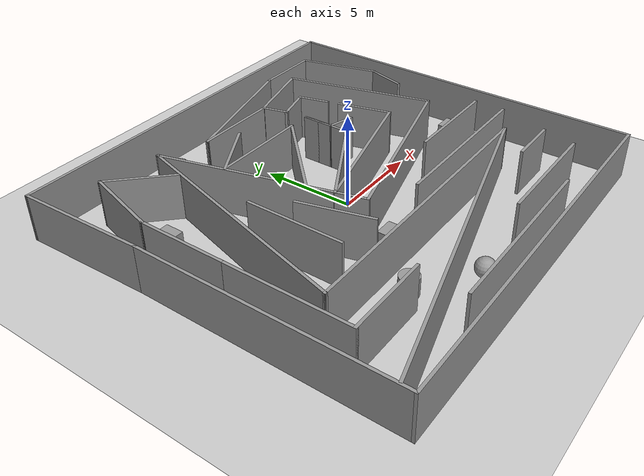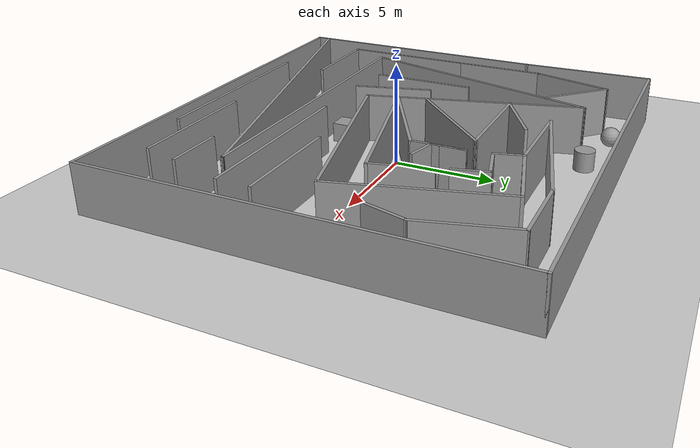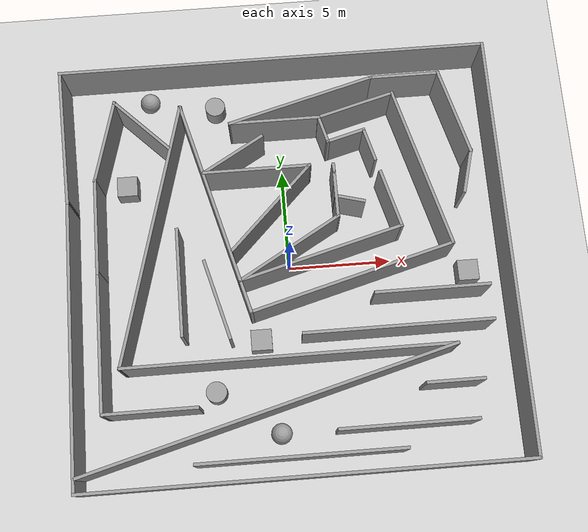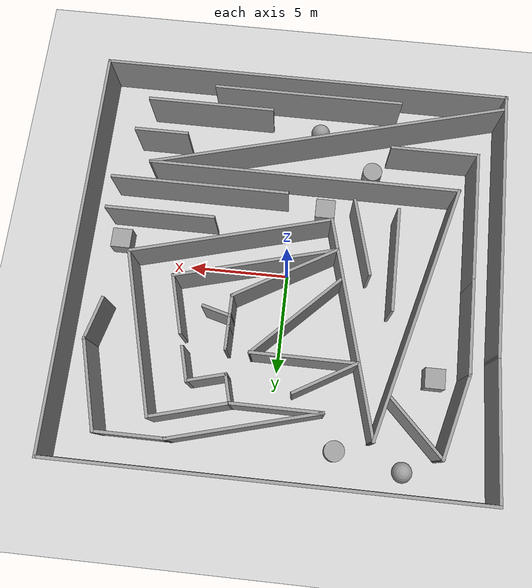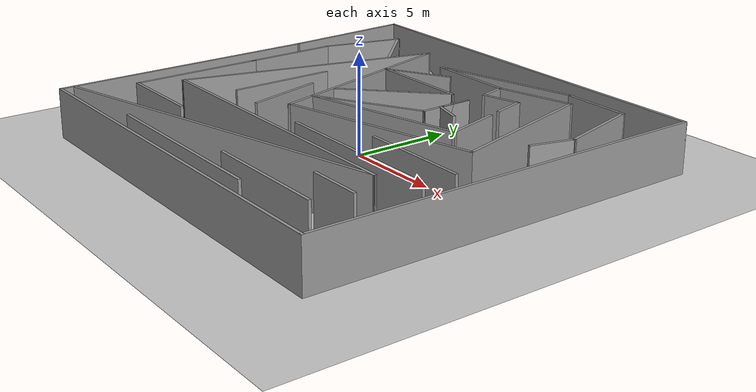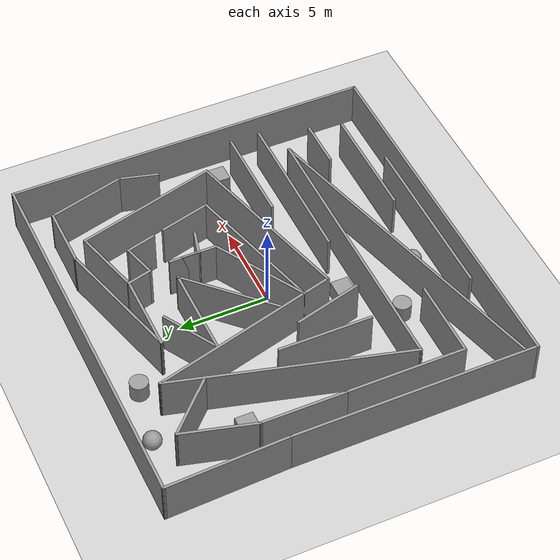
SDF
<sdf version="1.7">
 <world name="default">
  <light name="sun" type="directional">
   <pose>0 0 10 0 -0 0</pose>
   <diffuse>0.8 0.8 0.8 1</diffuse>
   <specular>0.2 0.2 0.2 1</specular>
   <attenuation>
    <range>1000</range>
    <constant>0.9</constant>
    <linear>0.01</linear>
    <quadratic>0.001</quadratic>
   </attenuation>
   <direction>-0.5 0.1 -0.9</direction>
   <spot><inner_angle>0</inner_angle><outer_angle>0</outer_angle><falloff>0</falloff></spot>
  </light>
  <model name="ground_plane">
   <static>1</static>
   <link name="link">
    <collision name="collision">
     <geometry><plane><normal>0 0 1</normal><size>100 100</size></plane></geometry>
     <surface><friction><ode><mu>100</mu><mu2>50</mu2></ode></friction></surface>
    </collision>
    <visual name="visual">
     <cast_shadows>0</cast_shadows>
     <geometry><plane><normal>0 0 1</normal><size>100 100</size></plane></geometry>
     <material>
      <script><uri>file://media/materials/scripts/gazebo.material</uri><name>Gazebo/Grey</name></script>
     </material>
    </visual>
   </link>
  </model>
  <gravity>0 0 -9.8</gravity>
  <magnetic_field>6e-06 2.3e-05 -4.2e-05</magnetic_field>
  <atmosphere type="adiabatic"/>
  <physics type="ode">
   <max_step_size>0.001</max_step_size>
   <real_time_factor>1</real_time_factor>
   <real_time_update_rate>1000</real_time_update_rate>
  </physics>
  <scene><ambient>0.4 0.4 0.4 1</ambient><background>0.7 0.7 0.7 1</background><shadows>1</shadows></scene>
  <spherical_coordinates>
   <surface_model>EARTH_WGS84</surface_model>
   <latitude_deg>0</latitude_deg>
   <longitude_deg>0</longitude_deg>
   <elevation>0</elevation>
   <heading_deg>0</heading_deg>
  </spherical_coordinates>
  <model name="Untitled">
   <pose>-0.100189 0.040191 0 0 -0 0</pose>
   <link name="Wall_0">
    <collision name="Wall_0_Collision">
     <geometry><box><size>13.75 0.15 2.5</size></box></geometry>
     <pose>0 0 1.25 0 -0 0</pose>
    </collision>
    <visual name="Wall_0_Visual">
     <pose>0 0 1.25 0 -0 0</pose>
     <geometry><box><size>13.75 0.15 2.5</size></box></geometry>
     <material>
      <script><uri>file://media/materials/scripts/gazebo.material</uri><name>Gazebo/Grey</name></script>
      <ambient>1 1 1 1</ambient>
     </material>
     <meta><layer>0</layer></meta>
    </visual>
    <pose>-10.2986 -3.37636 0 0 -0 -1.5708</pose>
   </link>
   <link name="Wall_1">
    <collision name="Wall_1_Collision">
     <geometry><box><size>21 0.15 2.5</size></box></geometry>
     <pose>0 0 1.25 0 -0 0</pose>
    </collision>
    <visual name="Wall_1_Visual">
     <pose>0 0 1.25 0 -0 0</pose>
     <geometry><box><size>21 0.15 2.5</size></box></geometry>
     <material>
      <script><uri>file://media/materials/scripts/gazebo.material</uri><name>Gazebo/Grey</name></script>
      <ambient>1 1 1 1</ambient>
     </material>
     <meta><layer>0</layer></meta>
    </visual>
    <pose>0.126362 -10.1764 0 0 -0 0</pose>
   </link>
   <link name="Wall_10">
    <collision name="Wall_10_Collision">
     <geometry><box><size>10.25 0.15 2.5</size></box></geometry>
     <pose>0 0 1.25 0 -0 0</pose>
    </collision>
    <visual name="Wall_10_Visual">
     <pose>0 0 1.25 0 -0 0</pose>
     <geometry><box><size>10.25 0.15 2.5</size></box></geometry>
     <material>
      <script><uri>file://media/materials/scripts/gazebo.material</uri><name>Gazebo/Grey</name></script>
      <ambient>1 1 1 1</ambient>
     </material>
     <meta><layer>0</layer></meta>
    </visual>
    <pose>2.99661 -1.25574 0 0 -0 0.261799</pose>
   </link>
   <link name="Wall_11">
    <collision name="Wall_11_Collision">
     <geometry><box><size>8.25 0.15 2.5</size></box></geometry>
     <pose>0 0 1.25 0 -0 0</pose>
    </collision>
    <visual name="Wall_11_Visual">
     <pose>0 0 1.25 0 -0 0</pose>
     <geometry><box><size>8.25 0.15 2.5</size></box></geometry>
     <material>
      <script><uri>file://media/materials/scripts/gazebo.material</uri><name>Gazebo/Grey</name></script>
      <ambient>1 1 1 1</ambient>
     </material>
     <meta><layer>0</layer></meta>
    </visual>
    <pose>6.82632 3.9633 0 0 -0 1.8326</pose>
   </link>
   <link name="Wall_12">
    <collision name="Wall_12_Collision">
     <geometry><box><size>4 0.15 2.5</size></box></geometry>
     <pose>0 0 1.25 0 -0 0</pose>
    </collision>
    <visual name="Wall_12_Visual">
     <pose>0 0 1.25 0 -0 0</pose>
     <geometry><box><size>4 0.15 2.5</size></box></geometry>
     <material>
      <script><uri>file://media/materials/scripts/gazebo.material</uri><name>Gazebo/Grey</name></script>
      <ambient>1 1 1 1</ambient>
     </material>
     <meta><layer>0</layer></meta>
    </visual>
    <pose>3.91869 7.37707 0 0 -0 -2.87979</pose>
   </link>
   <link name="Wall_13">
    <collision name="Wall_13_Collision">
     <geometry><box><size>1.5 0.15 2.5</size></box></geometry>
     <pose>0 0 1.25 0 -0 0</pose>
    </collision>
    <visual name="Wall_13_Visual">
     <pose>0 0 1.25 0 -0 0</pose>
     <geometry><box><size>1.5 0.15 2.5</size></box></geometry>
     <material>
      <script><uri>file://media/materials/scripts/gazebo.material</uri><name>Gazebo/Grey</name></script>
      <ambient>1 1 1 1</ambient>
     </material>
     <meta><layer>0</layer></meta>
    </visual>
    <pose>2.23399 6.22684 0 0 -0 -1.309</pose>
   </link>
   <link name="Wall_14">
    <collision name="Wall_14_Collision">
     <geometry><box><size>2 0.15 2.5</size></box></geometry>
     <pose>0 0 1.25 0 -0 0</pose>
    </collision>
    <visual name="Wall_14_Visual">
     <pose>0 0 1.25 0 -0 0</pose>
     <geometry><box><size>2 0.15 2.5</size></box></geometry>
     <material>
      <script><uri>file://media/materials/scripts/gazebo.material</uri><name>Gazebo/Grey</name></script>
      <ambient>1 1 1 1</ambient>
     </material>
     <meta><layer>0</layer></meta>
    </visual>
    <pose>3.30217 5.81425 0 0 -0 0.261799</pose>
   </link>
   <link name="Wall_15">
    <collision name="Wall_15_Collision">
     <geometry><box><size>1.75 0.15 2.5</size></box></geometry>
     <pose>0 0 1.25 0 -0 0</pose>
    </collision>
    <visual name="Wall_15_Visual">
     <pose>0 0 1.25 0 -0 0</pose>
     <geometry><box><size>1.75 0.15 2.5</size></box></geometry>
     <material>
      <script><uri>file://media/materials/scripts/gazebo.material</uri><name>Gazebo/Grey</name></script>
      <ambient>1 1 1 1</ambient>
     </material>
     <meta><layer>0</layer></meta>
    </visual>
    <pose>4.40271 5.28092 0 0 -0 -1.309</pose>
   </link>
   <link name="Wall_17">
    <collision name="Wall_17_Collision">
     <geometry><box><size>3 0.15 2.5</size></box></geometry>
     <pose>0 0 1.25 0 -0 0</pose>
    </collision>
    <visual name="Wall_17_Visual">
     <pose>0 0 1.25 0 -0 0</pose>
     <geometry><box><size>3 0.15 2.5</size></box></geometry>
     <material>
      <script><uri>file://media/materials/scripts/gazebo.material</uri><name>Gazebo/Grey</name></script>
      <ambient>1 1 1 1</ambient>
     </material>
     <meta><layer>0</layer></meta>
    </visual>
    <pose>5.17306 2.448 0 0 -0 -1.309</pose>
   </link>
   <link name="Wall_18">
    <collision name="Wall_18_Collision">
     <geometry><box><size>8.25 0.15 2.5</size></box></geometry>
     <pose>0 0 1.25 0 -0 0</pose>
    </collision>
    <visual name="Wall_18_Visual">
     <pose>0 0 1.25 0 -0 0</pose>
     <geometry><box><size>8.25 0.15 2.5</size></box></geometry>
     <material>
      <script><uri>file://media/materials/scripts/gazebo.material</uri><name>Gazebo/Grey</name></script>
      <ambient>1 1 1 1</ambient>
     </material>
     <meta><layer>0</layer></meta>
    </visual>
    <pose>1.62988 0.023341 0 0 -0 -2.87979</pose>
   </link>
   <link name="Wall_19">
    <collision name="Wall_19_Collision">
     <geometry><box><size>5.75 0.15 2.5</size></box></geometry>
     <pose>0 0 1.25 0 -0 0</pose>
    </collision>
    <visual name="Wall_19_Visual">
     <pose>0 0 1.25 0 -0 0</pose>
     <geometry><box><size>5.75 0.15 2.5</size></box></geometry>
     <material>
      <script><uri>file://media/materials/scripts/gazebo.material</uri><name>Gazebo/Grey</name></script>
      <ambient>1 1 1 1</ambient>
     </material>
     <meta><layer>0</layer></meta>
    </visual>
    <pose>0.142753 0.375123 0 0 -0 0.523599</pose>
   </link>
   <link name="Wall_2">
    <collision name="Wall_2_Collision">
     <geometry><box><size>20.5 0.15 2.5</size></box></geometry>
     <pose>0 0 1.25 0 -0 0</pose>
    </collision>
    <visual name="Wall_2_Visual">
     <pose>0 0 1.25 0 -0 0</pose>
     <geometry><box><size>20.5 0.15 2.5</size></box></geometry>
     <material>
      <script><uri>file://media/materials/scripts/gazebo.material</uri><name>Gazebo/Grey</name></script>
      <ambient>1 1 1 1</ambient>
     </material>
     <meta><layer>0</layer></meta>
    </visual>
    <pose>10.5514 -0.001361 0 0 -0 1.5708</pose>
   </link>
   <link name="Wall_20">
    <collision name="Wall_20_Collision">
     <geometry><box><size>2.75 0.15 2.5</size></box></geometry>
     <pose>0 0 1.25 0 -0 0</pose>
    </collision>
    <visual name="Wall_20_Visual">
     <pose>0 0 1.25 0 -0 0</pose>
     <geometry><box><size>2.75 0.15 2.5</size></box></geometry>
     <material>
      <script><uri>file://media/materials/scripts/gazebo.material</uri><name>Gazebo/Grey</name></script>
      <ambient>1 1 1 1</ambient>
     </material>
     <meta><layer>0</layer></meta>
    </visual>
    <pose>2.56763 3.07512 0 0 -0 1.5708</pose>
   </link>
   <link name="Wall_21">
    <collision name="Wall_21_Collision">
     <geometry><box><size>1.75 0.15 2.5</size></box></geometry>
     <pose>0 0 1.25 0 -0 0</pose>
    </collision>
    <visual name="Wall_21_Visual">
     <pose>0 0 1.25 0 -0 0</pose>
     <geometry><box><size>1.75 0.15 2.5</size></box></geometry>
     <material>
      <script><uri>file://media/materials/scripts/gazebo.material</uri><name>Gazebo/Grey</name></script>
      <ambient>1 1 1 1</ambient>
     </material>
     <meta><layer>0</layer></meta>
    </visual>
    <pose>2.56763 3.57512 0 0 -0 -1.5708</pose>
   </link>
   <link name="Wall_22">
    <collision name="Wall_22_Collision">
     <geometry><box><size>1.5 0.15 2.5</size></box></geometry>
     <pose>0 0 1.25 0 -0 0</pose>
    </collision>
    <visual name="Wall_22_Visual">
     <pose>0 0 1.25 0 -0 0</pose>
     <geometry><box><size>1.5 0.15 2.5</size></box></geometry>
     <material>
      <script><uri>file://media/materials/scripts/gazebo.material</uri><name>Gazebo/Grey</name></script>
      <ambient>1 1 1 1</ambient>
     </material>
     <meta><layer>0</layer></meta>
    </visual>
    <pose>3.21963 2.60042 0 0 -0 -0.261799</pose>
   </link>
   <link name="Wall_24">
    <collision name="Wall_24_Collision">
     <geometry><box><size>5.75 0.15 2.5</size></box></geometry>
     <pose>0 0 1.25 0 -0 0</pose>
    </collision>
    <visual name="Wall_24_Visual">
     <pose>0 0 1.25 0 -0 0</pose>
     <geometry><box><size>5.75 0.15 2.5</size></box></geometry>
     <material>
      <script><uri>file://media/materials/scripts/gazebo.material</uri><name>Gazebo/Grey</name></script>
      <ambient>1 1 1 1</ambient>
     </material>
     <meta><layer>0</layer></meta>
    </visual>
    <pose>-0.578769 2.44653 0 0 -0 0.785398</pose>
   </link>
   <link name="Wall_25">
    <collision name="Wall_25_Collision">
     <geometry><box><size>5.25 0.15 2.5</size></box></geometry>
     <pose>0 0 1.25 0 -0 0</pose>
    </collision>
    <visual name="Wall_25_Visual">
     <pose>0 0 1.25 0 -0 0</pose>
     <geometry><box><size>5.25 0.15 2.5</size></box></geometry>
     <material>
      <script><uri>file://media/materials/scripts/gazebo.material</uri><name>Gazebo/Grey</name></script>
      <ambient>1 1 1 1</ambient>
     </material>
     <meta><layer>0</layer></meta>
    </visual>
    <pose>-1.14887 4.42643 0 0 -0 3.14159</pose>
   </link>
   <link name="Wall_26">
    <collision name="Wall_26_Collision">
     <geometry><box><size>3.5 0.15 2.5</size></box></geometry>
     <pose>0 0 1.25 0 -0 0</pose>
    </collision>
    <visual name="Wall_26_Visual">
     <pose>0 0 1.25 0 -0 0</pose>
     <geometry><box><size>3.5 0.15 2.5</size></box></geometry>
     <material>
      <script><uri>file://media/materials/scripts/gazebo.material</uri><name>Gazebo/Grey</name></script>
      <ambient>1 1 1 1</ambient>
     </material>
     <meta><layer>0</layer></meta>
    </visual>
    <pose>-2.24828 5.26393 0 0 -0 0.523599</pose>
   </link>
   <link name="Wall_28">
    <collision name="Wall_28_Collision">
     <geometry><box><size>4.5 0.15 2.5</size></box></geometry>
     <pose>0 0 1.25 0 -0 0</pose>
    </collision>
    <visual name="Wall_28_Visual">
     <pose>0 0 1.25 0 -0 0</pose>
     <geometry><box><size>4.5 0.15 2.5</size></box></geometry>
     <material>
      <script><uri>file://media/materials/scripts/gazebo.material</uri><name>Gazebo/Grey</name></script>
      <ambient>1 1 1 1</ambient>
     </material>
     <meta><layer>0</layer></meta>
    </visual>
    <pose>-0.115715 6.87884 0 0 -0 3.14159</pose>
   </link>
   <link name="Wall_29">
    <collision name="Wall_29_Collision">
     <geometry><box><size>7.5 0.15 2.5</size></box></geometry>
     <pose>0 0 1.25 0 -0 0</pose>
    </collision>
    <visual name="Wall_29_Visual">
     <pose>0 0 1.25 0 -0 0</pose>
     <geometry><box><size>7.5 0.15 2.5</size></box></geometry>
     <material>
      <script><uri>file://media/materials/scripts/gazebo.material</uri><name>Gazebo/Grey</name></script>
      <ambient>1 1 1 1</ambient>
     </material>
     <meta><layer>0</layer></meta>
    </visual>
    <pose>1.25906 7.83 0 0 -0 0.261799</pose>
   </link>
   <link name="Wall_3">
    <collision name="Wall_3_Collision">
     <geometry><box><size>21.25 0.15 2.5</size></box></geometry>
     <pose>0 0 1.25 0 -0 0</pose>
    </collision>
    <visual name="Wall_3_Visual">
     <pose>0 0 1.25 0 -0 0</pose>
     <geometry><box><size>21.25 0.15 2.5</size></box></geometry>
     <material>
      <script><uri>file://media/materials/scripts/gazebo.material</uri><name>Gazebo/Grey</name></script>
      <ambient>1 1 1 1</ambient>
     </material>
     <meta><layer>0</layer></meta>
    </visual>
    <pose>0.001362 10.1736 0 0 -0 3.14159</pose>
   </link>
   <link name="Wall_30">
    <collision name="Wall_30_Collision">
     <geometry><box><size>3.5 0.15 2.5</size></box></geometry>
     <pose>0 0 1.25 0 -0 0</pose>
    </collision>
    <visual name="Wall_30_Visual">
     <pose>0 0 1.25 0 -0 0</pose>
     <geometry><box><size>3.5 0.15 2.5</size></box></geometry>
     <material>
      <script><uri>file://media/materials/scripts/gazebo.material</uri><name>Gazebo/Grey</name></script>
      <ambient>1 1 1 1</ambient>
     </material>
     <meta><layer>0</layer></meta>
    </visual>
    <pose>6.48384 8.78116 0 0 -0 0</pose>
   </link>
   <link name="Wall_31">
    <collision name="Wall_31_Collision">
     <geometry><box><size>4.5 0.15 2.5</size></box></geometry>
     <pose>0 0 1.25 0 -0 0</pose>
    </collision>
    <visual name="Wall_31_Visual">
     <pose>0 0 1.25 0 -0 0</pose>
     <geometry><box><size>4.5 0.15 2.5</size></box></geometry>
     <material>
      <script><uri>file://media/materials/scripts/gazebo.material</uri><name>Gazebo/Grey</name></script>
      <ambient>1 1 1 1</ambient>
     </material>
     <meta><layer>0</layer></meta>
    </visual>
    <pose>8.72177 6.68027 0 0 -0 -1.309</pose>
   </link>
   <link name="Wall_32">
    <collision name="Wall_32_Collision">
     <geometry><box><size>2.25 0.15 2.5</size></box></geometry>
     <pose>0 0 1.25 0 -0 0</pose>
    </collision>
    <visual name="Wall_32_Visual">
     <pose>0 0 1.25 0 -0 0</pose>
     <geometry><box><size>2.25 0.15 2.5</size></box></geometry>
     <material>
      <script><uri>file://media/materials/scripts/gazebo.material</uri><name>Gazebo/Grey</name></script>
      <ambient>1 1 1 1</ambient>
     </material>
     <meta><layer>0</layer></meta>
    </visual>
    <pose>9.01294 3.56516 0 0 -0 -1.8326</pose>
   </link>
   <link name="Wall_34">
    <collision name="Wall_34_Collision">
     <geometry><box><size>3.75 0.15 2.5</size></box></geometry>
     <pose>0 0 1.25 0 -0 0</pose>
    </collision>
    <visual name="Wall_34_Visual">
     <pose>0 0 1.25 0 -0 0</pose>
     <geometry><box><size>3.75 0.15 2.5</size></box></geometry>
     <material>
      <script><uri>file://media/materials/scripts/gazebo.material</uri><name>Gazebo/Grey</name></script>
      <ambient>1 1 1 1</ambient>
     </material>
     <meta><layer>0</layer></meta>
    </visual>
    <pose>-6.62289 7.12002 0 0 -0 2.35619</pose>
   </link>
   <link name="Wall_35">
    <collision name="Wall_35_Collision">
     <geometry><box><size>4.25 0.15 2.5</size></box></geometry>
     <pose>0 0 1.25 0 -0 0</pose>
    </collision>
    <visual name="Wall_35_Visual">
     <pose>0 0 1.25 0 -0 0</pose>
     <geometry><box><size>4.25 0.15 2.5</size></box></geometry>
     <material>
      <script><uri>file://media/materials/scripts/gazebo.material</uri><name>Gazebo/Grey</name></script>
      <ambient>1 1 1 1</ambient>
     </material>
     <meta><layer>0</layer></meta>
    </visual>
    <pose>-8.42627 6.41266 0 0 -0 -1.8326</pose>
   </link>
   <link name="Wall_36">
    <collision name="Wall_36_Collision">
     <geometry><box><size>4.75 0.15 2.5</size></box></geometry>
     <pose>0 0 1.25 0 -0 0</pose>
    </collision>
    <visual name="Wall_36_Visual">
     <pose>0 0 1.25 0 -0 0</pose>
     <geometry><box><size>4.75 0.15 2.5</size></box></geometry>
     <material>
      <script><uri>file://media/materials/scripts/gazebo.material</uri><name>Gazebo/Grey</name></script>
      <ambient>1 1 1 1</ambient>
     </material>
     <meta><layer>0</layer></meta>
    </visual>
    <pose>-8.95684 2.13251 0 0 -0 -1.5708</pose>
   </link>
   <link name="Wall_37">
    <collision name="Wall_37_Collision">
     <geometry><box><size>6.75 0.15 2.5</size></box></geometry>
     <pose>0 0 1.25 0 -0 0</pose>
    </collision>
    <visual name="Wall_37_Visual">
     <pose>0 0 1.25 0 -0 0</pose>
     <geometry><box><size>6.75 0.15 2.5</size></box></geometry>
     <material>
      <script><uri>file://media/materials/scripts/gazebo.material</uri><name>Gazebo/Grey</name></script>
      <ambient>1 1 1 1</ambient>
     </material>
     <meta><layer>0</layer></meta>
    </visual>
    <pose>-8.95684 -3.46749 0 0 -0 -1.5708</pose>
   </link>
   <link name="Wall_38">
    <collision name="Wall_38_Collision">
     <geometry><box><size>4.5 0.15 2.5</size></box></geometry>
     <pose>0 0 1.25 0 -0 0</pose>
    </collision>
    <visual name="Wall_38_Visual">
     <pose>0 0 1.25 0 -0 0</pose>
     <geometry><box><size>4.5 0.15 2.5</size></box></geometry>
     <material>
      <script><uri>file://media/materials/scripts/gazebo.material</uri><name>Gazebo/Grey</name></script>
      <ambient>1 1 1 1</ambient>
     </material>
     <meta><layer>0</layer></meta>
    </visual>
    <pose>-6.78184 -6.76749 0 0 -0 0</pose>
   </link>
   <link name="Wall_4">
    <collision name="Wall_4_Collision">
     <geometry><box><size>6.90463 0.15 2.5</size></box></geometry>
     <pose>0 0 1.25 0 -0 0</pose>
    </collision>
    <visual name="Wall_4_Visual">
     <pose>0 0 1.25 0 -0 0</pose>
     <geometry><box><size>6.90463 0.15 2.5</size></box></geometry>
     <material>
      <script><uri>file://media/materials/scripts/gazebo.material</uri><name>Gazebo/Grey</name></script>
      <ambient>1 1 1 1</ambient>
     </material>
     <meta><layer>0</layer></meta>
    </visual>
    <pose>-10.4236 6.79864 0 0 -0 -1.53378</pose>
   </link>
   <link name="Wall_40">
    <collision name="Wall_40_Collision">
     <geometry><box><size>9.75 0.15 2.5</size></box></geometry>
     <pose>0 0 1.25 0 -0 0</pose>
    </collision>
    <visual name="Wall_40_Visual">
     <pose>0 0 1.25 0 -0 0</pose>
     <geometry><box><size>9.75 0.15 2.5</size></box></geometry>
     <material>
      <script><uri>file://media/materials/scripts/gazebo.material</uri><name>Gazebo/Grey</name></script>
      <ambient>1 1 1 1</ambient>
     </material>
     <meta><layer>0</layer></meta>
    </visual>
    <pose>-0.064636 -9.28316 0 0 -0 0</pose>
   </link>
   <link name="Wall_42">
    <collision name="Wall_42_Collision">
     <geometry><box><size>6.5 0.15 2.5</size></box></geometry>
     <pose>0 0 1.25 0 -0 0</pose>
    </collision>
    <visual name="Wall_42_Visual">
     <pose>0 0 1.25 0 -0 0</pose>
     <geometry><box><size>6.5 0.15 2.5</size></box></geometry>
     <material>
      <script><uri>file://media/materials/scripts/gazebo.material</uri><name>Gazebo/Grey</name></script>
      <ambient>1 1 1 1</ambient>
     </material>
     <meta><layer>0</layer></meta>
    </visual>
    <pose>4.90462 -8.23132 0 0 -0 0</pose>
   </link>
   <link name="Wall_44">
    <collision name="Wall_44_Collision">
     <geometry><box><size>2.75 0.15 2.5</size></box></geometry>
     <pose>0 0 1.25 0 -0 0</pose>
    </collision>
    <visual name="Wall_44_Visual">
     <pose>0 0 1.25 0 -0 0</pose>
     <geometry><box><size>2.75 0.15 2.5</size></box></geometry>
     <material>
      <script><uri>file://media/materials/scripts/gazebo.material</uri><name>Gazebo/Grey</name></script>
      <ambient>1 1 1 1</ambient>
     </material>
     <meta><layer>0</layer></meta>
    </visual>
    <pose>7.237 -6.45127 0 0 -0 0</pose>
   </link>
   <link name="Wall_46">
    <collision name="Wall_46_Collision">
     <geometry><box><size>9 0.15 2.5</size></box></geometry>
     <pose>0 0 1.25 0 -0 0</pose>
    </collision>
    <visual name="Wall_46_Visual">
     <pose>0 0 1.25 0 -0 0</pose>
     <geometry><box><size>9 0.15 2.5</size></box></geometry>
     <material>
      <script><uri>file://media/materials/scripts/gazebo.material</uri><name>Gazebo/Grey</name></script>
      <ambient>1 1 1 1</ambient>
     </material>
     <meta><layer>0</layer></meta>
    </visual>
    <pose>4.9005 -3.74075 0 0 -0 0</pose>
   </link>
   <link name="Wall_48">
    <collision name="Wall_48_Collision">
     <geometry><box><size>5.25 0.15 2.5</size></box></geometry>
     <pose>0 0 1.25 0 -0 0</pose>
    </collision>
    <visual name="Wall_48_Visual">
     <pose>0 0 1.25 0 -0 0</pose>
     <geometry><box><size>5.25 0.15 2.5</size></box></geometry>
     <material>
      <script><uri>file://media/materials/scripts/gazebo.material</uri><name>Gazebo/Grey</name></script>
      <ambient>1 1 1 1</ambient>
     </material>
     <meta><layer>0</layer></meta>
    </visual>
    <pose>-5.14783 -0.869699 0 0 -0 -1.5708</pose>
   </link>
   <link name="Wall_50">
    <collision name="Wall_50_Collision">
     <geometry><box><size>4 0.15 2.5</size></box></geometry>
     <pose>0 0 1.25 0 -0 0</pose>
    </collision>
    <visual name="Wall_50_Visual">
     <pose>0 0 1.25 0 -0 0</pose>
     <geometry><box><size>4 0.15 2.5</size></box></geometry>
     <material>
      <script><uri>file://media/materials/scripts/gazebo.material</uri><name>Gazebo/Grey</name></script>
      <ambient>1 1 1 1</ambient>
     </material>
     <meta><layer>0</layer></meta>
    </visual>
    <pose>-3.43593 -1.83779 0 0 -0 -1.309</pose>
   </link>
   <link name="Wall_52">
    <collision name="Wall_52_Collision">
     <geometry><box><size>5.5 0.15 2.5</size></box></geometry>
     <pose>0 0 1.25 0 -0 0</pose>
    </collision>
    <visual name="Wall_52_Visual">
     <pose>0 0 1.25 0 -0 0</pose>
     <geometry><box><size>5.5 0.15 2.5</size></box></geometry>
     <material>
      <script><uri>file://media/materials/scripts/gazebo.material</uri><name>Gazebo/Grey</name></script>
      <ambient>1 1 1 1</ambient>
     </material>
     <meta><layer>0</layer></meta>
    </visual>
    <pose>6.67014 -2.08207 0 0 -0 0</pose>
   </link>
   <link name="Wall_6">
    <collision name="Wall_6_Collision">
     <geometry><box><size>18.5 0.15 2.5</size></box></geometry>
     <pose>0 0 1.25 0 -0 0</pose>
    </collision>
    <visual name="Wall_6_Visual">
     <pose>0 0 1.25 0 -0 0</pose>
     <geometry><box><size>18.5 0.15 2.5</size></box></geometry>
     <material>
      <script><uri>file://media/materials/scripts/gazebo.material</uri><name>Gazebo/Grey</name></script>
      <ambient>1 1 1 1</ambient>
     </material>
     <meta><layer>0</layer></meta>
    </visual>
    <pose>-1.3424 -7.11077 0 0 -0 0.261799</pose>
   </link>
   <link name="Wall_7">
    <collision name="Wall_7_Collision">
     <geometry><box><size>15.75 0.15 2.5</size></box></geometry>
     <pose>0 0 1.25 0 -0 0</pose>
    </collision>
    <visual name="Wall_7_Visual">
     <pose>0 0 1.25 0 -0 0</pose>
     <geometry><box><size>15.75 0.15 2.5</size></box></geometry>
     <material>
      <script><uri>file://media/materials/scripts/gazebo.material</uri><name>Gazebo/Grey</name></script>
      <ambient>1 1 1 1</ambient>
     </material>
     <meta><layer>0</layer></meta>
    </visual>
    <pose>-0.280033 -4.73611 0 0 -0 3.14159</pose>
   </link>
   <link name="Wall_8">
    <collision name="Wall_8_Collision">
     <geometry><box><size>13.25 0.15 2.5</size></box></geometry>
     <pose>0 0 1.25 0 -0 0</pose>
    </collision>
    <visual name="Wall_8_Visual">
     <pose>0 0 1.25 0 -0 0</pose>
     <geometry><box><size>13.25 0.15 2.5</size></box></geometry>
     <material>
      <script><uri>file://media/materials/scripts/gazebo.material</uri><name>Gazebo/Grey</name></script>
      <ambient>1 1 1 1</ambient>
     </material>
     <meta><layer>0</layer></meta>
    </visual>
    <pose>-6.38477 1.59071 0 0 -0 1.309</pose>
   </link>
   <link name="Wall_9">
    <collision name="Wall_9_Collision">
     <geometry><box><size>11 0.15 2.5</size></box></geometry>
     <pose>0 0 1.25 0 -0 0</pose>
    </collision>
    <visual name="Wall_9_Visual">
     <pose>0 0 1.25 0 -0 0</pose>
     <geometry><box><size>11 0.15 2.5</size></box></geometry>
     <material>
      <script><uri>file://media/materials/scripts/gazebo.material</uri><name>Gazebo/Grey</name></script>
      <ambient>1 1 1 1</ambient>
     </material>
     <meta><layer>0</layer></meta>
    </visual>
    <pose>-3.28541 2.67737 0 0 -0 -1.309</pose>
   </link>
   <static>1</static>
  </model>
  <model name="unit_box">
   <pose>-7.7241 4.57786 0.499995 0 1e-05 0</pose>
   <link name="link">
    <inertial>
     <mass>1</mass>
     <inertia>
      <ixx>0.166667</ixx>
      <ixy>0</ixy>
      <ixz>0</ixz>
      <iyy>0.166667</iyy>
      <iyz>0</iyz>
      <izz>0.166667</izz>
     </inertia>
    </inertial>
    <collision name="collision"><geometry><box><size>1 1 1</size></box></geometry></collision>
    <visual name="visual">
     <geometry><box><size>1 1 1</size></box></geometry>
     <material>
      <script><name>Gazebo/Grey</name><uri>file://media/materials/scripts/gazebo.material</uri></script>
     </material>
    </visual>
   </link>
  </model>
  <model name="unit_sphere">
   <pose>-6.44633 9.14701 0.5 0 -0 0</pose>
   <link name="link">
    <inertial>
     <mass>1</mass>
     <inertia><ixx>0.1</ixx><ixy>0</ixy><ixz>0</ixz><iyy>0.1</iyy><iyz>0</iyz><izz>0.1</izz></inertia>
    </inertial>
    <collision name="collision"><geometry><sphere><radius>0.5</radius></sphere></geometry></collision>
    <visual name="visual">
     <geometry><sphere><radius>0.5</radius></sphere></geometry>
     <material>
      <script><name>Gazebo/Grey</name><uri>file://media/materials/scripts/gazebo.material</uri></script>
     </material>
    </visual>
   </link>
  </model>
  <model name="unit_cylinder">
   <pose>-3.13349 8.50794 0.499992 -3e-06 -4e-06 -0</pose>
   <link name="link">
    <inertial>
     <mass>1</mass>
     <inertia><ixx>0.145833</ixx><ixy>0</ixy><ixz>0</ixz><iyy>0.145833</iyy><iyz>0</iyz><izz>0.125</izz></inertia>
    </inertial>
    <collision name="collision">
     <geometry><cylinder><radius>0.5</radius><length>1</length></cylinder></geometry>
    </collision>
    <visual name="visual">
     <geometry><cylinder><radius>0.5</radius><length>1</length></cylinder></geometry>
     <material>
      <script><name>Gazebo/Grey</name><uri>file://media/materials/scripts/gazebo.material</uri></script>
     </material>
    </visual>
   </link>
  </model>
  <model name="unit_box_0">
   <pose>-1.6189 -3.61901 0.499995 -1e-05 -0 -0</pose>
   <link name="link">
    <inertial>
     <mass>1</mass>
     <inertia>
      <ixx>0.166667</ixx>
      <ixy>0</ixy>
      <ixz>0</ixz>
      <iyy>0.166667</iyy>
      <iyz>0</iyz>
      <izz>0.166667</izz>
     </inertia>
    </inertial>
    <collision name="collision"><geometry><box><size>1 1 1</size></box></geometry></collision>
    <visual name="visual">
     <geometry><box><size>1 1 1</size></box></geometry>
     <material>
      <script><name>Gazebo/Grey</name><uri>file://media/materials/scripts/gazebo.material</uri></script>
     </material>
    </visual>
   </link>
  </model>
  <model name="unit_sphere_0">
   <pose>-0.987112 -8.06459 0.5 0 -0 0</pose>
   <link name="link">
    <inertial>
     <mass>1</mass>
     <inertia><ixx>0.1</ixx><ixy>0</ixy><ixz>0</ixz><iyy>0.1</iyy><iyz>0</iyz><izz>0.1</izz></inertia>
    </inertial>
    <collision name="collision"><geometry><sphere><radius>0.5</radius></sphere></geometry></collision>
    <visual name="visual">
     <geometry><sphere><radius>0.5</radius></sphere></geometry>
     <material>
      <script><name>Gazebo/Grey</name><uri>file://media/materials/scripts/gazebo.material</uri></script>
     </material>
    </visual>
   </link>
  </model>
  <model name="unit_cylinder_0">
   <pose>-3.90356 -5.93336 0.499993 -3e-06 -4e-06 -0</pose>
   <link name="link">
    <inertial>
     <mass>1</mass>
     <inertia><ixx>0.145833</ixx><ixy>0</ixy><ixz>0</ixz><iyy>0.145833</iyy><iyz>0</iyz><izz>0.125</izz></inertia>
    </inertial>
    <collision name="collision">
     <geometry><cylinder><radius>0.5</radius><length>1</length></cylinder></geometry>
    </collision>
    <visual name="visual">
     <geometry><cylinder><radius>0.5</radius><length>1</length></cylinder></geometry>
     <material>
      <script><name>Gazebo/Grey</name><uri>file://media/materials/scripts/gazebo.material</uri></script>
     </material>
    </visual>
   </link>
  </model>
  <model name="unit_box_1">
   <pose>8.63036 -0.95606 0.5 0 -0 0</pose>
   <link name="link">
    <inertial>
     <mass>1</mass>
     <inertia>
      <ixx>0.166667</ixx>
      <ixy>0</ixy>
      <ixz>0</ixz>
      <iyy>0.166667</iyy>
      <iyz>0</iyz>
      <izz>0.166667</izz>
     </inertia>
    </inertial>
    <collision name="collision"><geometry><box><size>1 1 1</size></box></geometry></collision>
    <visual name="visual">
     <geometry><box><size>1 1 1</size></box></geometry>
     <material>
      <script><name>Gazebo/Grey</name><uri>file://media/materials/scripts/gazebo.material</uri></script>
     </material>
    </visual>
   </link>
  </model>
 </world>
</sdf>
